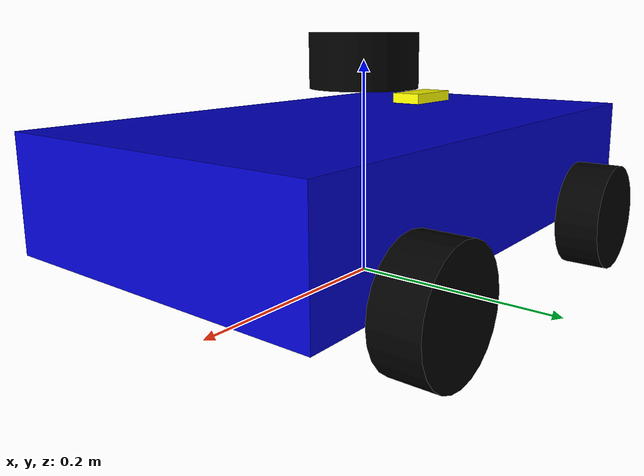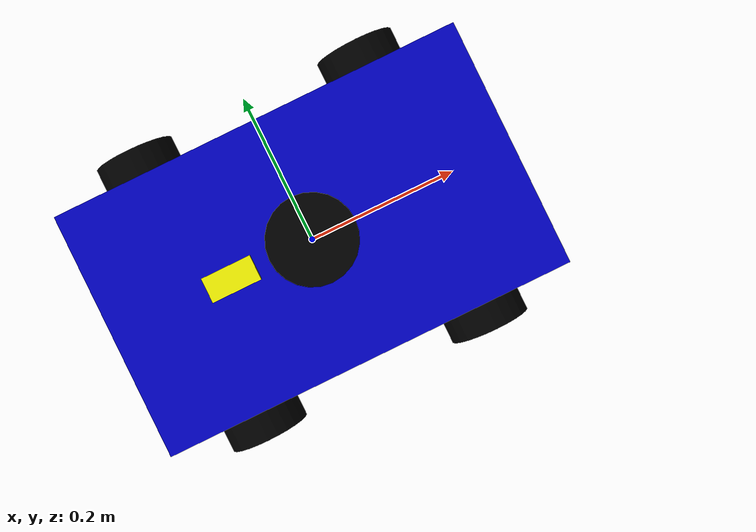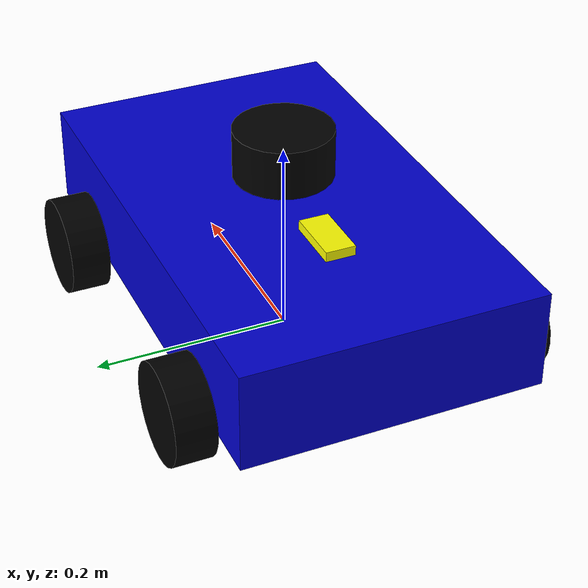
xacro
<?xml version="1.0"?>
<robot name="esp32_complete_robot" xmlns:xacro="http://www.ros.org/wiki/xacro">

  <!-- Arguments -->
  <xacro:arg name="use_fake_hardware" default="false"/>

  <!-- Robot Configuration -->
  <link name="base_footprint">
    <visual>
      <geometry>
        <box size="0.001 0.001 0.001"/>
      </geometry>
      <material name="transparent">
        <color rgba="0 0 0 0"/>
      </material>
    </visual>
  </link>

  <joint name="base_joint" type="fixed">
    <parent link="base_footprint"/>
    <child link="base_link"/>
    <origin xyz="0 0 0.1" rpy="0 0 0"/>
  </joint>

  <!-- Colors -->
  <material name="black">
    <color rgba="0.0 0.0 0.0 1.0"/>
  </material>
  <material name="blue">
    <color rgba="0.0 0.0 0.8 1.0"/>
  </material>
  <material name="red">
    <color rgba="0.8 0.0 0.0 1.0"/>
  </material>
  <material name="green">
    <color rgba="0.0 0.8 0.0 1.0"/>
  </material>
  <material name="yellow">
    <color rgba="1.0 1.0 0.0 1.0"/>
  </material>

  <!-- Base Link -->
  <link name="base_link">
    <visual>
      <geometry>
        <box size="0.5 0.3 0.1"/>
      </geometry>
      <material name="blue"/>
    </visual>
    <collision>
      <geometry>
        <box size="0.5 0.3 0.1"/>
      </geometry>
    </collision>
    <inertial>
      <mass value="5.0"/>
      <origin xyz="0 0 0" rpy="0 0 0"/>
      <inertia ixx="0.1" ixy="0" ixz="0" iyy="0.1" iyz="0" izz="0.1"/>
    </inertial>
  </link>

  <!-- Wheel macro -->
  <xacro:macro name="wheel" params="prefix x_pos y_pos">
    <link name="${prefix}_wheel">
      <visual>
        <geometry>
          <cylinder radius="0.05" length="0.04"/>
        </geometry>
        <material name="black"/>
      </visual>
      <collision>
        <geometry>
          <cylinder radius="0.05" length="0.04"/>
        </geometry>
      </collision>
      <inertial>
        <mass value="0.5"/>
        <origin xyz="0 0 0" rpy="0 0 0"/>
        <inertia ixx="0.001" ixy="0" ixz="0" iyy="0.001" iyz="0" izz="0.001"/>
      </inertial>
    </link>

    <joint name="${prefix}_wheel_joint" type="continuous">
      <parent link="base_link"/>
      <child link="${prefix}_wheel"/>
      <origin xyz="${x_pos} ${y_pos} -0.05" rpy="-1.5708 0 0"/>
      <axis xyz="0 0 1"/>
      <dynamics damping="0.05" friction="0.05"/>
    </joint>
  </xacro:macro>

  <!-- Create all four wheels -->
  <xacro:wheel prefix="front_left" x_pos="0.15" y_pos="0.17"/>
  <xacro:wheel prefix="front_right" x_pos="0.15" y_pos="-0.17"/>
  <xacro:wheel prefix="rear_left" x_pos="-0.15" y_pos="0.17"/>
  <xacro:wheel prefix="rear_right" x_pos="-0.15" y_pos="-0.17"/>

  <!-- LiDAR Link -->
  <link name="lidar_link">
    <visual>
      <geometry>
        <cylinder radius="0.05" length="0.05"/>
      </geometry>
      <material name="black"/>
    </visual>
    <collision>
      <geometry>
        <cylinder radius="0.05" length="0.05"/>
      </geometry>
    </collision>
    <inertial>
      <mass value="0.1"/>
      <origin xyz="0 0 0" rpy="0 0 0"/>
      <inertia ixx="0.001" ixy="0" ixz="0" iyy="0.001" iyz="0" izz="0.001"/>
    </inertial>
  </link>

  <joint name="lidar_joint" type="fixed">
    <parent link="base_link"/>
    <child link="lidar_link"/>
    <origin xyz="0 0 0.1" rpy="0 0 0"/>
  </joint>

  <!-- IMU Link (MPU6050) -->
  <link name="imu_link">
    <visual>
      <geometry>
        <box size="0.02 0.03 0.01"/>
      </geometry>
      <material name="green"/>
    </visual>
    <collision>
      <geometry>
        <box size="0.02 0.03 0.01"/>
      </geometry>
    </collision>
    <inertial>
      <mass value="0.01"/>
      <origin xyz="0 0 0" rpy="0 0 0"/>
      <inertia ixx="0.0001" ixy="0" ixz="0" iyy="0.0001" iyz="0" izz="0.0001"/>
    </inertial>
  </link>

  <!-- IMU mounting joint -->
  <joint name="imu_joint" type="fixed">
    <parent link="base_link"/>
    <child link="imu_link"/>
    <origin xyz="0.0 0.0 0.08" rpy="0 0 0"/>
  </joint>

  <!-- ESP32 Controller Board Link -->
  <link name="esp32_link">
    <visual>
      <geometry>
        <box size="0.06 0.03 0.01"/>
      </geometry>
      <material name="yellow"/>
    </visual>
    <collision>
      <geometry>
        <box size="0.06 0.03 0.01"/>
      </geometry>
    </collision>
    <inertial>
      <mass value="0.05"/>
      <origin xyz="0 0 0" rpy="0 0 0"/>
      <inertia ixx="0.0001" ixy="0" ixz="0" iyy="0.0001" iyz="0" izz="0.0001"/>
    </inertial>
  </link>

  <joint name="esp32_joint" type="fixed">
    <parent link="base_link"/>
    <child link="esp32_link"/>
    <origin xyz="-0.1 0.0 0.06" rpy="0 0 0"/>
  </joint>

  <!-- ROS2 Control Configuration -->
  <ros2_control name="esp32_hardware_system" type="system">
    <hardware>
      <plugin>my_slam_pkg/ESP32HardwareInterface</plugin>
      <param name="use_sim_hardware">$(arg use_fake_hardware)</param>
      <param name="wheel_radius">0.05</param>
      <param name="wheel_separation">0.34</param>
      <param name="cmd_vel_topic">/cmd_vel</param>
      <param name="joint_states_topic">/joint_states</param>
      <param name="odom_topic">/odom</param>
      <param name="use_stamped_vel">false</param>
    </hardware>

    <!-- Front Left Wheel -->
    <joint name="front_left_wheel_joint">
      <command_interface name="velocity">
        <param name="min">-10</param>
        <param name="max">10</param>
      </command_interface>
      <state_interface name="position"/>
      <state_interface name="velocity"/>
      <state_interface name="effort"/>
    </joint>

    <!-- Front Right Wheel -->
    <joint name="front_right_wheel_joint">
      <command_interface name="velocity">
        <param name="min">-10</param>
        <param name="max">10</param>
      </command_interface>
      <state_interface name="position"/>
      <state_interface name="velocity"/>
      <state_interface name="effort"/>
    </joint>

    <!-- Rear Left Wheel -->
    <joint name="rear_left_wheel_joint">
      <command_interface name="velocity">
        <param name="min">-10</param>
        <param name="max">10</param>
      </command_interface>
      <state_interface name="position"/>
      <state_interface name="velocity"/>
      <state_interface name="effort"/>
    </joint>

    <!-- Rear Right Wheel -->
    <joint name="rear_right_wheel_joint">
      <command_interface name="velocity">
        <param name="min">-10</param>
        <param name="max">10</param>
      </command_interface>
      <state_interface name="position"/>
      <state_interface name="velocity"/>
      <state_interface name="effort"/>
    </joint>
  </ros2_control>

  <!-- Gazebo ROS2 Control Plugin -->
  <gazebo>
    <plugin name="gazebo_ros2_control" filename="libgazebo_ros2_control.so">
      <xacro:if value="$(arg use_fake_hardware)">
        <parameters>$(find my_slam_pkg)/config/controllers.yaml</parameters>
        <robot_sim_type>gazebo_ros2_control/GazeboSystem</robot_sim_type>
      </xacro:if>
      <xacro:unless value="$(arg use_fake_hardware)">
        <parameters>$(find my_slam_pkg)/config/esp32_controllers.yaml</parameters>
        <robot_sim_type>my_slam_pkg/ESP32HardwareInterface</robot_sim_type>
      </xacro:unless>
    </plugin>
  </gazebo>

  <!-- LiDAR Sensor Configuration -->
  <gazebo reference="lidar_link">
    <sensor type="ray" name="lidar">
      <pose>0 0 0 0 0 0</pose>
      <visualize>true</visualize>
      <update_rate>20</update_rate>
      <ray>
        <scan>
          <horizontal>
            <samples>720</samples>
            <resolution>0.5</resolution>
            <min_angle>-3.14159</min_angle>
            <max_angle>3.14159</max_angle>
          </horizontal>
        </scan>
        <range>
          <min>0.15</min>
          <max>12.0</max>
          <resolution>0.01</resolution>
        </range>
        <noise>
          <type>gaussian</type>
          <mean>0.0</mean>
          <stddev>0.01</stddev>
        </noise>
      </ray>
      <plugin name="laser_controller" filename="libgazebo_ros_ray_sensor.so">
        <ros>
          <namespace>/</namespace>
          <remapping>~/out:=scan</remapping>
        </ros>
        <output_type>sensor_msgs/LaserScan</output_type>
        <frame_name>lidar_link</frame_name>
      </plugin>
    </sensor>
  </gazebo>

  <!-- IMU Sensor Configuration for Gazebo -->
  <gazebo reference="imu_link">
    <sensor name="imu_sensor" type="imu">
      <plugin filename="libgazebo_ros_imu_sensor.so" name="imu_plugin">
        <ros>
          <namespace>/</namespace>
          <remapping>~/out:=imu/data</remapping>
        </ros>
        <initial_orientation_as_reference>false</initial_orientation_as_reference>
      </plugin>
      <always_on>true</always_on>
      <update_rate>100</update_rate>
      <visualize>true</visualize>
      <imu>
        <angular_velocity>
          <x>
            <noise type="gaussian">
              <mean>0.0</mean>
              <stddev>2e-4</stddev>
              <bias_mean>0.0000075</bias_mean>
              <bias_stddev>0.0000008</bias_stddev>
            </noise>
          </x>
          <y>
            <noise type="gaussian">
              <mean>0.0</mean>
              <stddev>2e-4</stddev>
              <bias_mean>0.0000075</bias_mean>
              <bias_stddev>0.0000008</bias_stddev>
            </noise>
          </y>
          <z>
            <noise type="gaussian">
              <mean>0.0</mean>
              <stddev>2e-4</stddev>
              <bias_mean>0.0000075</bias_mean>
              <bias_stddev>0.0000008</bias_stddev>
            </noise>
          </z>
        </angular_velocity>
        <linear_acceleration>
          <x>
            <noise type="gaussian">
              <mean>0.0</mean>
              <stddev>1.7e-2</stddev>
              <bias_mean>0.1</bias_mean>
              <bias_stddev>0.001</bias_stddev>
            </noise>
          </x>
          <y>
            <noise type="gaussian">
              <mean>0.0</mean>
              <stddev>1.7e-2</stddev>
              <bias_mean>0.1</bias_mean>
              <bias_stddev>0.001</bias_stddev>
            </noise>
          </y>
          <z>
            <noise type="gaussian">
              <mean>0.0</mean>
              <stddev>1.7e-2</stddev>
              <bias_mean>0.1</bias_mean>
              <bias_stddev>0.001</bias_stddev>
            </noise>
          </z>
        </linear_acceleration>
      </imu>
    </sensor>
  </gazebo>

  <!-- Material Properties -->
  <gazebo reference="base_link">
    <material>Gazebo/Blue</material>
  </gazebo>

  <gazebo reference="front_left_wheel">
    <material>Gazebo/Black</material>
    <mu1>0.8</mu1>
    <mu2>0.8</mu2>
    <kp>500000.0</kp>
    <kd>10.0</kd>
    <fdir1>1 0 0</fdir1>
  </gazebo>

  <gazebo reference="front_right_wheel">
    <material>Gazebo/Black</material>
    <mu1>0.8</mu1>
    <mu2>0.8</mu2>
    <kp>500000.0</kp>
    <kd>10.0</kd>
    <fdir1>1 0 0</fdir1>
  </gazebo>

  <gazebo reference="rear_left_wheel">
    <material>Gazebo/Black</material>
    <mu1>0.8</mu1>
    <mu2>0.8</mu2>
    <kp>500000.0</kp>
    <kd>10.0</kd>
    <fdir1>1 0 0</fdir1>
  </gazebo>

  <gazebo reference="rear_right_wheel">
    <material>Gazebo/Black</material>
    <mu1>0.8</mu1>
    <mu2>0.8</mu2>
    <kp>500000.0</kp>
    <kd>10.0</kd>
    <fdir1>1 0 0</fdir1>
  </gazebo>

  <gazebo reference="lidar_link">
    <material>Gazebo/Black</material>
  </gazebo>

  <gazebo reference="imu_link">
    <material>Gazebo/Green</material>
  </gazebo>

  <gazebo reference="esp32_link">
    <material>Gazebo/Yellow</material>
  </gazebo>

</robot>
